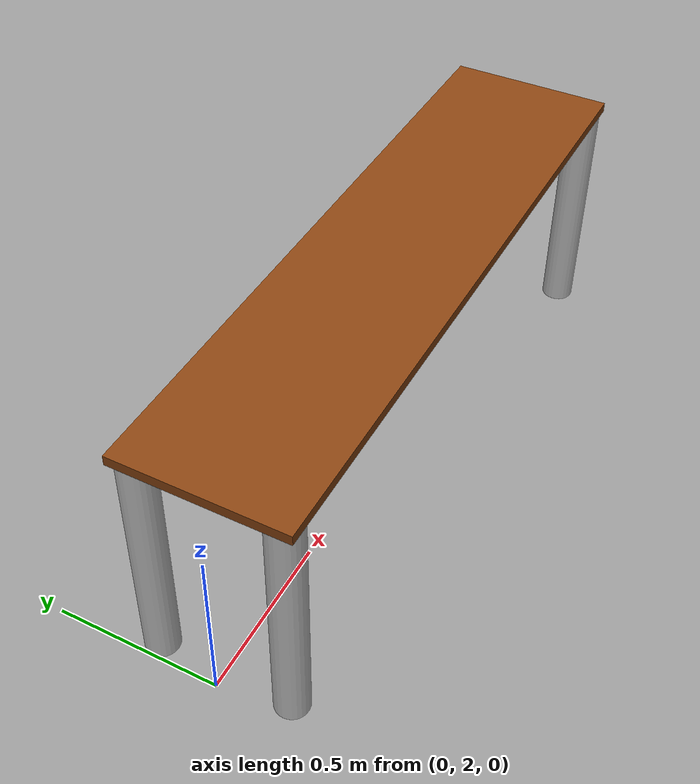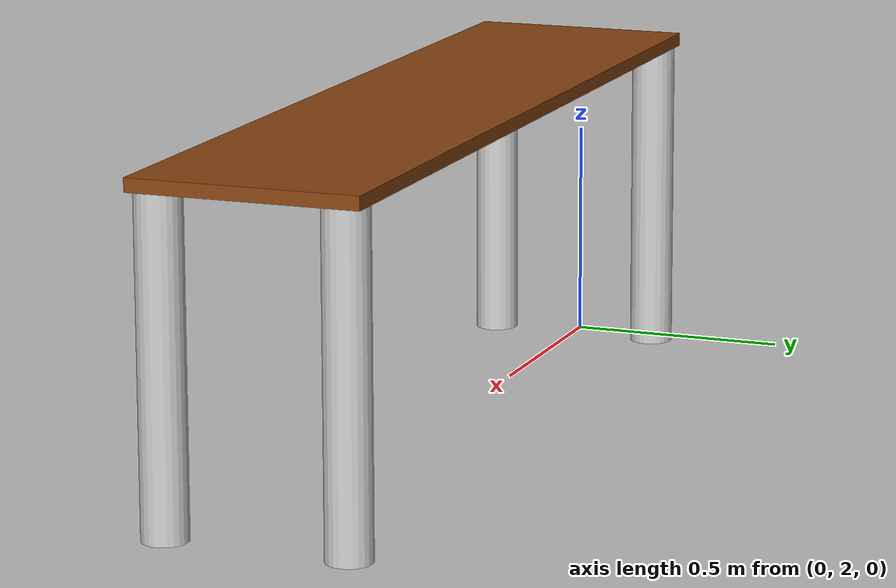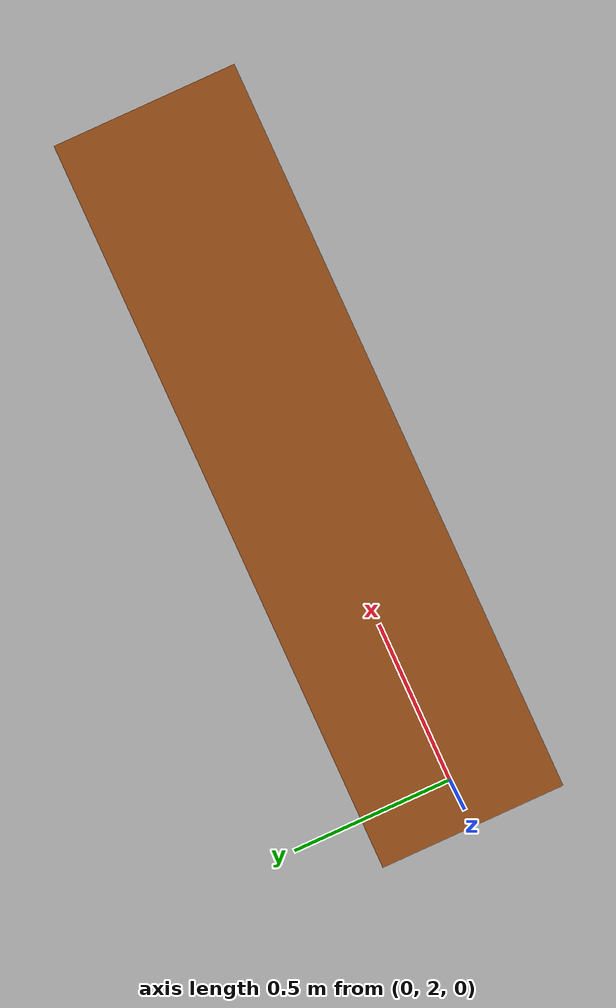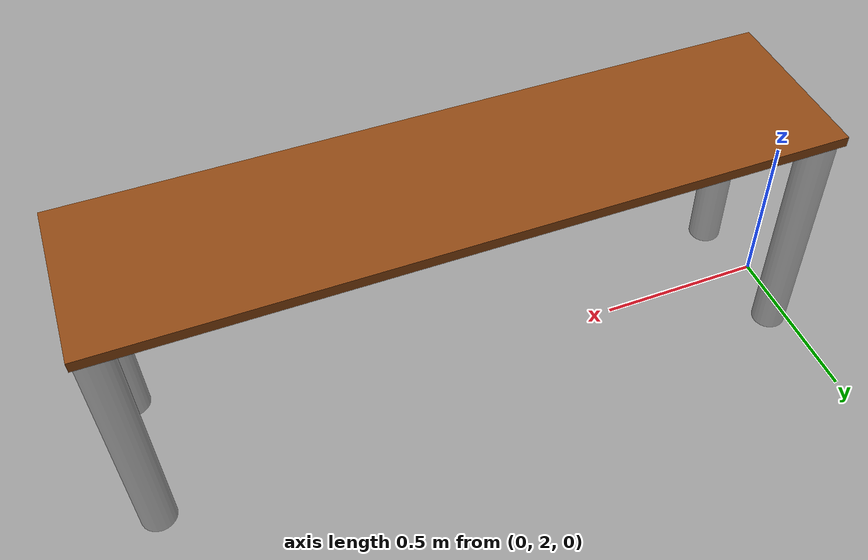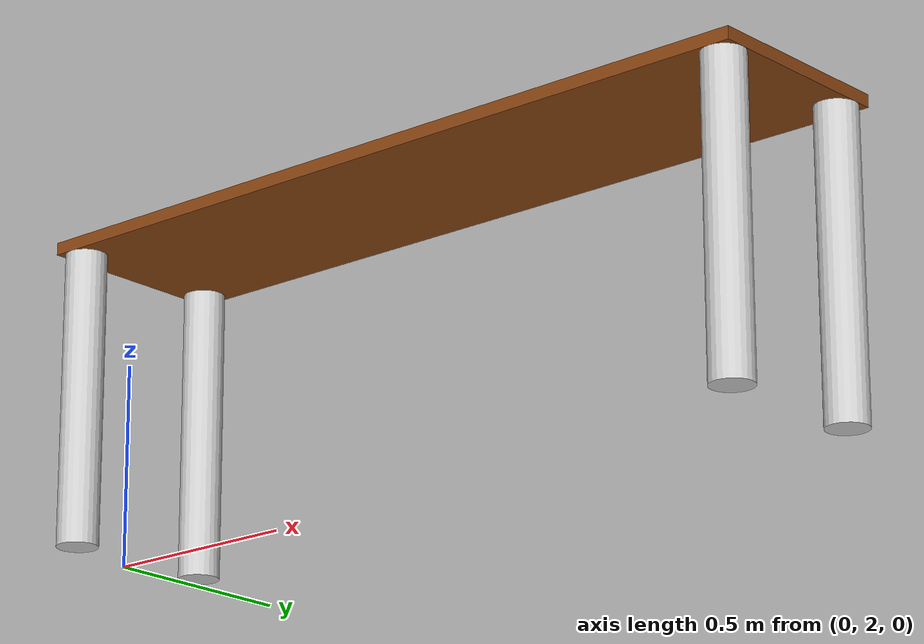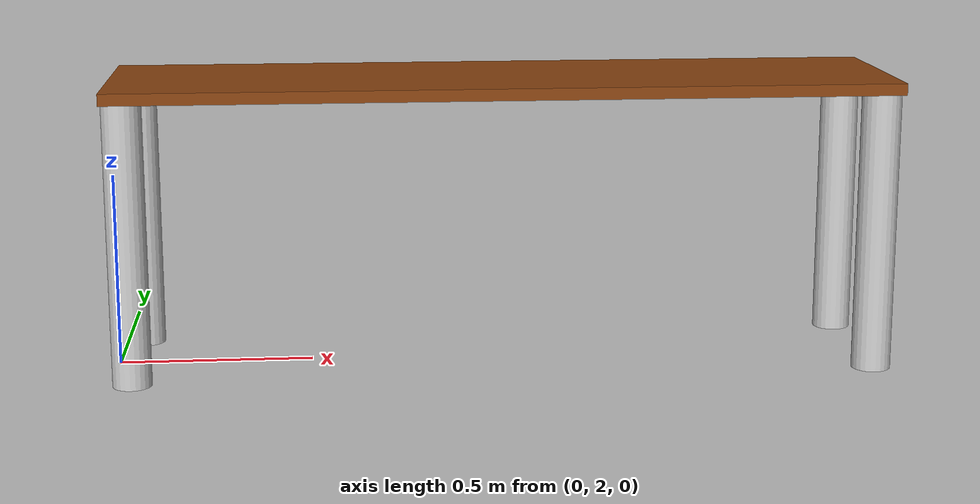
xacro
<?xml version="1.0" encoding="UTF-8"?>
<robot xmlns:xacro="http://wiki.ros.org/xacro" name="table">

  <!-- Use this if parameters are set from the launch file, otherwise delete -->
  <xacro:arg name="prefix" default="" />

  <xacro:include filename="$(find table_description)/urdf/inertials.xacro" />
  <xacro:include filename="$(find table_description)/urdf/materials.xacro" />
  <xacro:include filename="$(find table_description)/urdf/table_macro.xacro" />

  <!-- create link fixed to the "world" -->
  <link name="world" />

  <!-- Load robot's macro with parameters -->
  <!-- set prefix if multiple robots are used -->
  <xacro:table prefix="$(arg prefix)" parent="world" length="2" width="0.5" height="0.75"
    thickness="0.03" leg_radius="0.05" top_material="brown" leg_material="light_grey">
    <origin xyz="1 2 0" rpy="0 0 0" />  <!-- position table in the world -->
  </xacro:table>

</robot>

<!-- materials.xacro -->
<robot>
  <material name="black">
    <color rgba="0.0 0.0 0.0 1.0"/>
  </material>

  <material name="blue">
    <color rgba="0.0 0.0 0.8 1.0"/>
  </material>

  <material name="green">
    <color rgba="0.0 1.0 0.0 1.0"/>
  </material>

  <material name="dark_grey">
    <color rgba="0.2 0.2 0.2 1.0"/>
  </material>

  <material name="grey">
    <color rgba="0.5 0.5 0.5 1.0"/>
  </material>

  <material name="light_grey">
    <color rgba="0.8 0.8 0.8 1.0"/>
  </material>

  <material name="orange">
    <color rgba="${255/255} ${108/255} ${10/255} 1.0"/>
  </material>

  <material name="brown">
    <color rgba="0.54 0.27 0.07 1.0"/>
</material>

  <material name="red">
    <color rgba="0.8 0.0 0.0 1.0"/>
  </material>

  <material name="white">
    <color rgba="1.0 1.0 1.0 1.0"/>
  </material>

</robot>

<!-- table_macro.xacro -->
<robot xmlns:xacro="http://wiki.ros.org/xacro">

  <xacro:macro name="table" params="parent prefix *origin length width height thickness leg_radius top_material leg_material">

    <!-- calculated properties -->
    <xacro:property name="leg_length" value="${height - thickness}" />

    <joint name="${prefix}base_joint" type="fixed">
      <xacro:insert_block name="origin" />
      <parent link="${parent}" />
      <child link="${prefix}base_link" />
    </joint>

    <link name="${prefix}base_link"/>

    <joint name="${prefix}top_joint" type="fixed">
      <origin rpy="0 0 0" xyz="0 0 ${height}" />
      <parent link="${prefix}base_link" />
      <child link="${prefix}top" />
    </joint>

    <link name="${prefix}top">
      <visual>
        <origin rpy="0 0 0" xyz="0 0 ${-thickness/2}" />
        <geometry>
          <box size="${length} ${width} ${thickness}" />
        </geometry>
        <material name="${top_material}" />
      </visual>

      <collision>
        <origin rpy="0 0 0" xyz="0 0 ${-thickness/2}" />
        <geometry>
          <box size="${length} ${width} ${thickness}" />
        </geometry>
      </collision>

    </link>

    <!-- macro for creating leg -->
    <xacro:macro name="leg" params="name">
      <link name="${name}">
        <visual>
          <origin rpy="0 0 0" xyz="0 0 ${-leg_length/2}" />
          <geometry>
            <cylinder radius="${leg_radius}" length="${leg_length}" />
          </geometry>
          <material name="${leg_material}" />
        </visual>
        <collision>
          <origin rpy="0 0 0" xyz="0 0 ${-leg_length/2}" />
          <geometry>
            <cylinder radius="${leg_radius}" length="${leg_length}" />
          </geometry>
        </collision>

      </link>
    </xacro:macro>

    <!-- create four legs -->
    <xacro:leg name="${prefix}leg1" />
    <xacro:leg name="${prefix}leg2" />
    <xacro:leg name="${prefix}leg3" />
    <xacro:leg name="${prefix}leg4" />

    <!-- create the joints -->
    <joint name="${prefix}joint1" type="fixed">
      <origin rpy="0 0 0" xyz="${(length/2 - leg_radius)} ${(width/2 - leg_radius)} ${-thickness}" />
      <parent link="${prefix}top" />
      <child link="${prefix}leg1" />
    </joint>

    <joint name="${prefix}joint2" type="fixed">
      <origin rpy="0 0 0" xyz="${-(length/2 - leg_radius)} ${(width/2 - leg_radius)} ${-thickness}" />
      <parent link="${prefix}top" />
      <child link="${prefix}leg2" />
    </joint>

    <joint name="${prefix}joint3" type="fixed">
      <origin rpy="0 0 0" xyz="${-(length/2 - leg_radius)} ${-(width/2 - leg_radius)} ${-thickness}" />
      <parent link="${prefix}top" />
      <child link="${prefix}leg3" />
    </joint>

    <joint name="${prefix}joint4" type="fixed">
      <origin rpy="0 0 0" xyz="${(length/2 - leg_radius)} ${-(width/2 - leg_radius)} ${-thickness}" />
      <parent link="${prefix}top" />
      <child link="${prefix}leg4" />
    </joint>

  </xacro:macro>
</robot>
